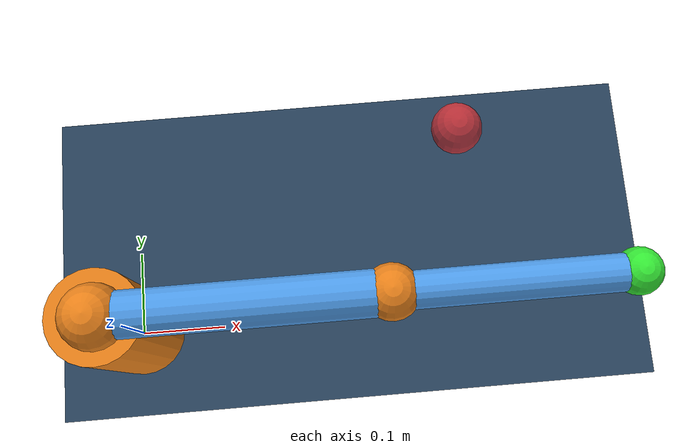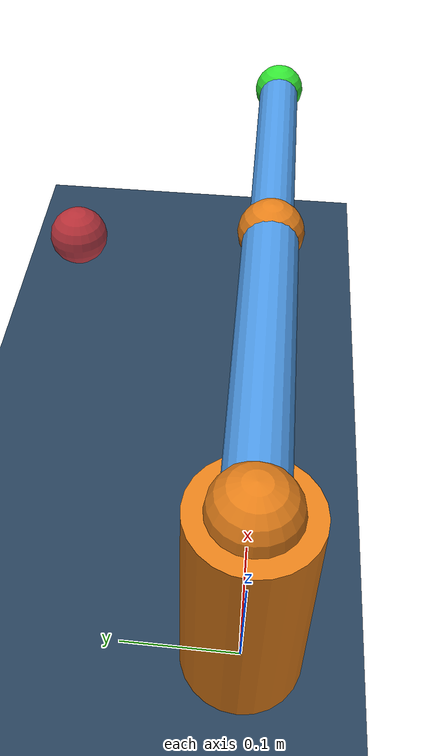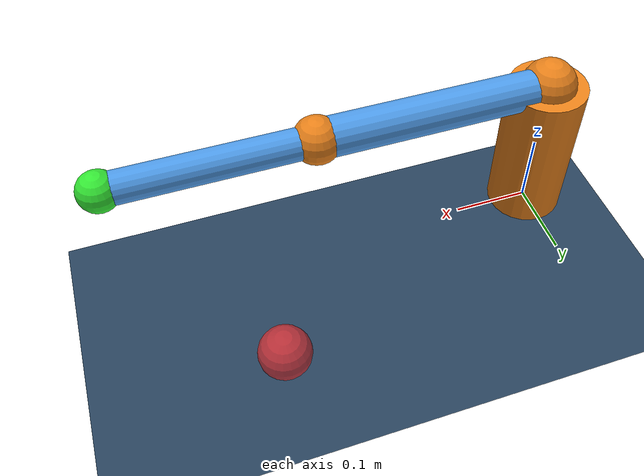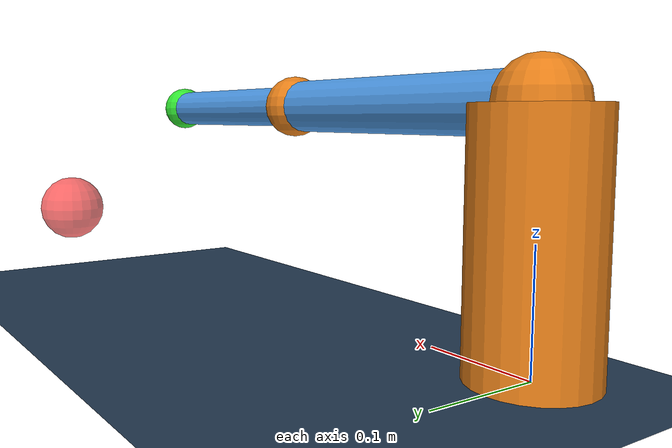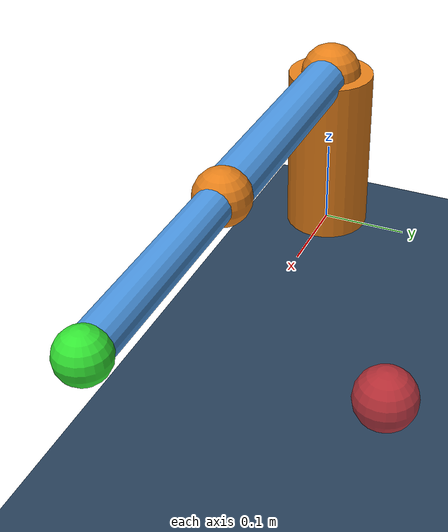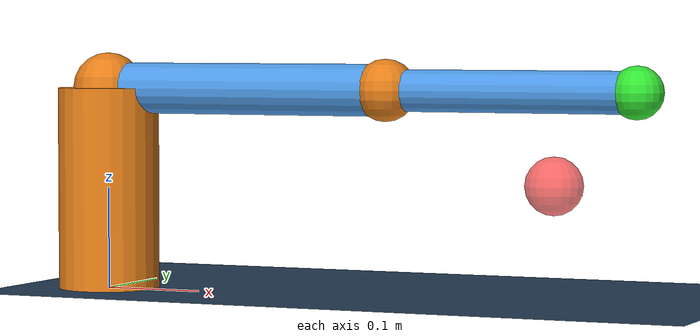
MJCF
<mujoco model="2dof_arm">

  <compiler angle="radian"/>

  <option gravity="0 0 -9.81" timestep="0.002"/>

  <visual>
    <headlight diffuse="0.6 0.6 0.6" ambient="0.3 0.3 0.3" specular="0 0 0"/>
    <rgba haze="0.15 0.25 0.35 1"/>
    <global azimuth="120" elevation="-20"/>
  </visual>

  <asset>
    <texture type="skybox" builtin="gradient"
             rgb1="0.3 0.5 0.7" rgb2="0 0 0" width="512" height="3072"/>
    <texture type="2d" name="groundplane" builtin="checker"
             rgb1="0.2 0.3 0.4" rgb2="0.1 0.2 0.3" width="300" height="300" mark="edge" markrgb="0.8 0.8 0.8"/>
    <material name="groundplane" texture="groundplane" texuniform="true" texrepeat="5 5" reflectance="0.2"/>
    <material name="link"      rgba="0.3 0.6 0.9 1"/>
    <material name="joint_cap" rgba="0.9 0.5 0.1 1"/>
    <material name="ee"        rgba="0.2 0.9 0.2 1"/>
    <material name="target"    rgba="1.0 0.2 0.2 0.7"/>
  </asset>

  <worldbody>

    <!-- Ground -->
    <geom name="floor" type="plane" size="0 0 0.05" material="groundplane"/>

    <!-- Fixed base -->
    <body name="base" pos="0 0 0.1">
      <geom type="cylinder" size="0.05 0.1" material="joint_cap"/>

      <!-- === Link 1 (shoulder) === -->
      <body name="link1" pos="0 0 0.1">
        <joint name="shoulder" type="hinge" axis="0 0 1"
               range="-3.14159 3.14159" damping="0.5" armature="0.1"/>
        <geom type="capsule" fromto="0 0 0  0.3 0 0" size="0.025" material="link"/>
        <geom type="sphere"  pos="0 0 0"              size="0.035" material="joint_cap"/>

        <!-- === Link 2 (elbow) === -->
        <body name="link2" pos="0.3 0 0">
          <joint name="elbow" type="hinge" axis="0 0 1"
                 range="-2.617 2.617" damping="0.3" armature="0.05"/>
          <geom type="capsule" fromto="0 0 0  0.25 0 0" size="0.02"  material="link"/>
          <geom type="sphere"  pos="0 0 0"               size="0.030" material="joint_cap"/>
          <!-- End-effector -->
          <geom name="end_effector" type="sphere" pos="0.25 0 0" size="0.025" material="ee"/>
          <site name="end_effector_site" pos="0.25 0 0" size="0.01"/>
        </body>
      </body>
    </body>

    <!-- Target marker (visual only — repositioned at runtime via mocap) -->
    <body name="target" pos="0.4 0.2 0.1" mocap="true">
      <geom type="sphere" size="0.03" material="target" contype="0" conaffinity="0"/>
    </body>

  </worldbody>

  <!-- Actuators — one per joint -->
  <actuator>
    <motor name="shoulder_motor" joint="shoulder" gear="1" ctrllimited="true" ctrlrange="-10 10"/>
    <motor name="elbow_motor"    joint="elbow"    gear="1" ctrllimited="true" ctrlrange="-10 10"/>
  </actuator>

  <!-- Sensors -->
  <sensor>
    <jointpos name="shoulder_pos" joint="shoulder"/>
    <jointpos name="elbow_pos"    joint="elbow"/>
    <jointvel name="shoulder_vel" joint="shoulder"/>
    <jointvel name="elbow_vel"    joint="elbow"/>
    <framepos name="ee_pos"       objtype="site" objname="end_effector_site"/>
  </sensor>

</mujoco>
